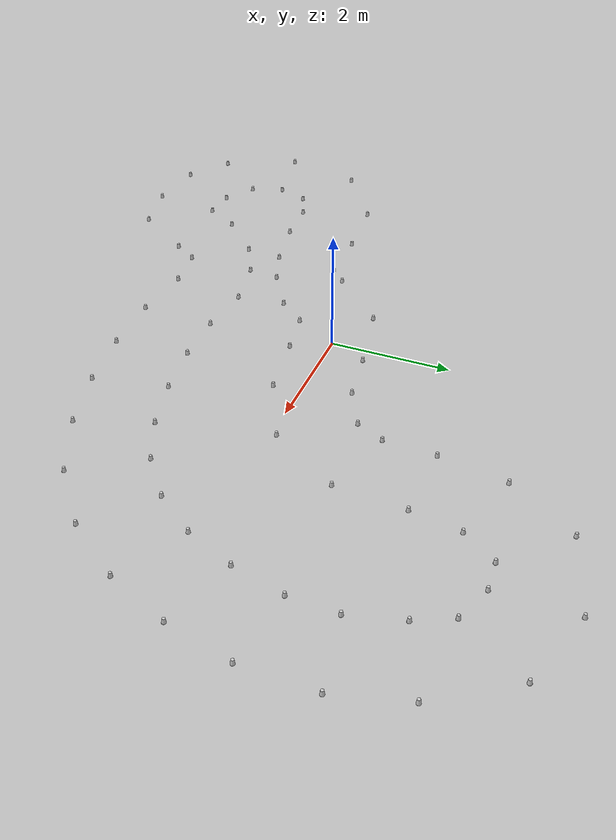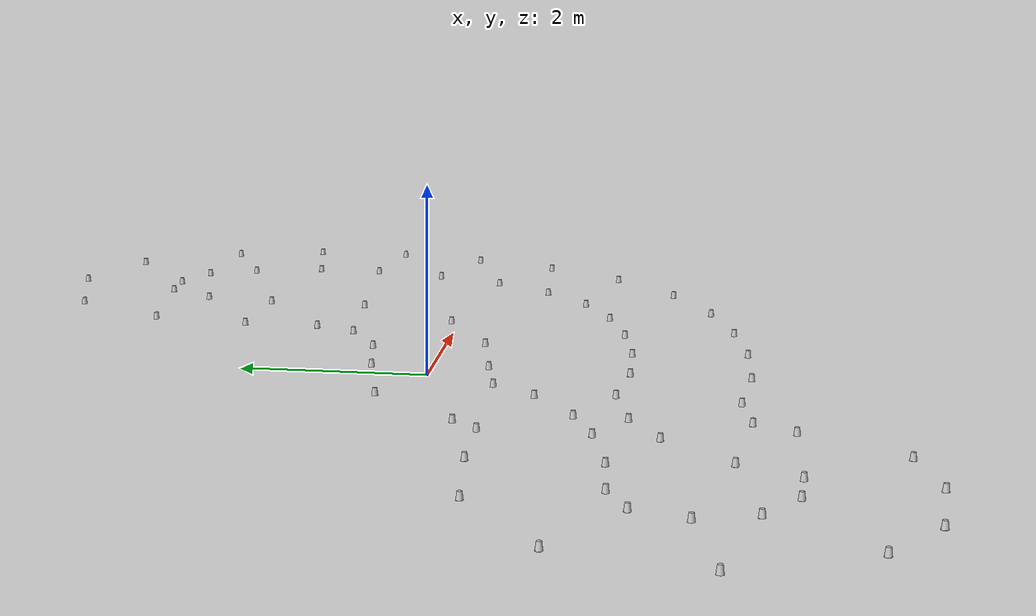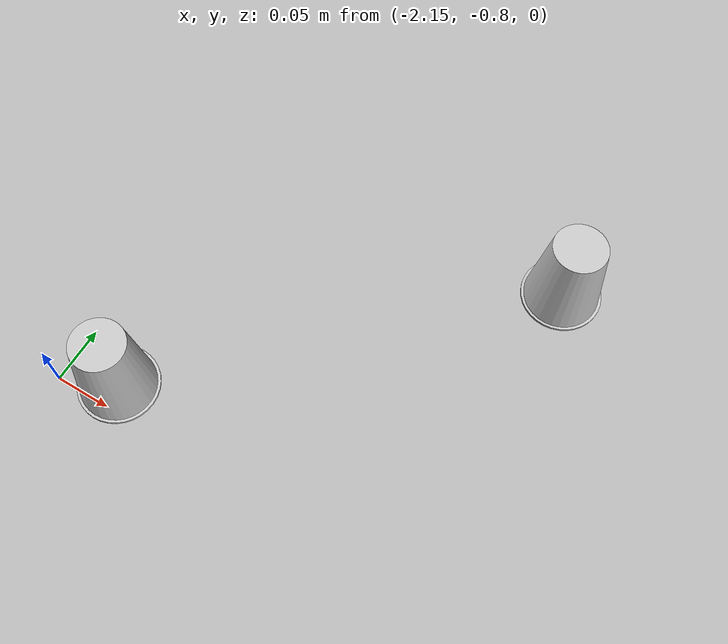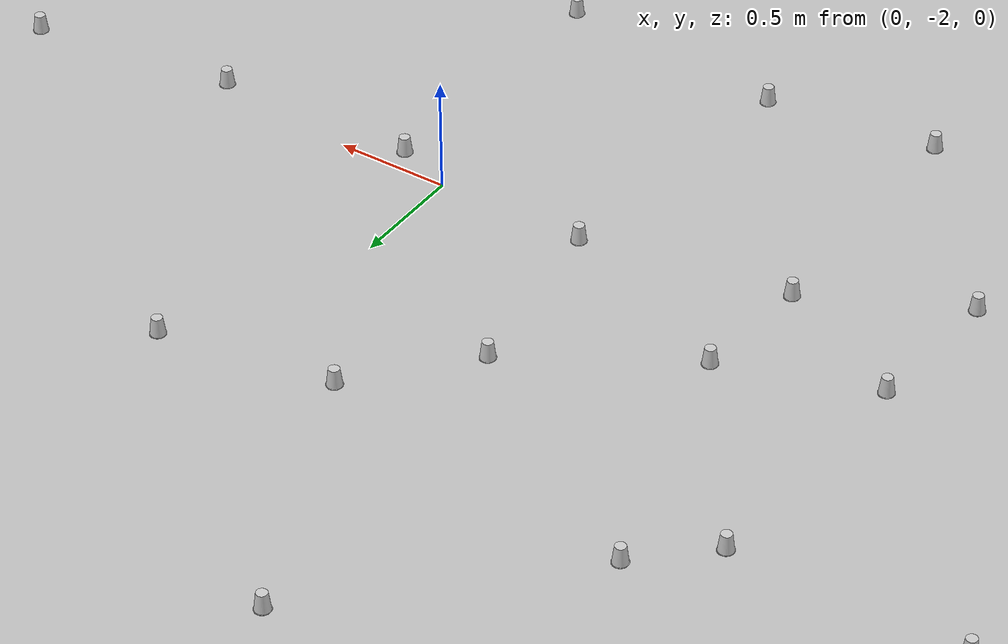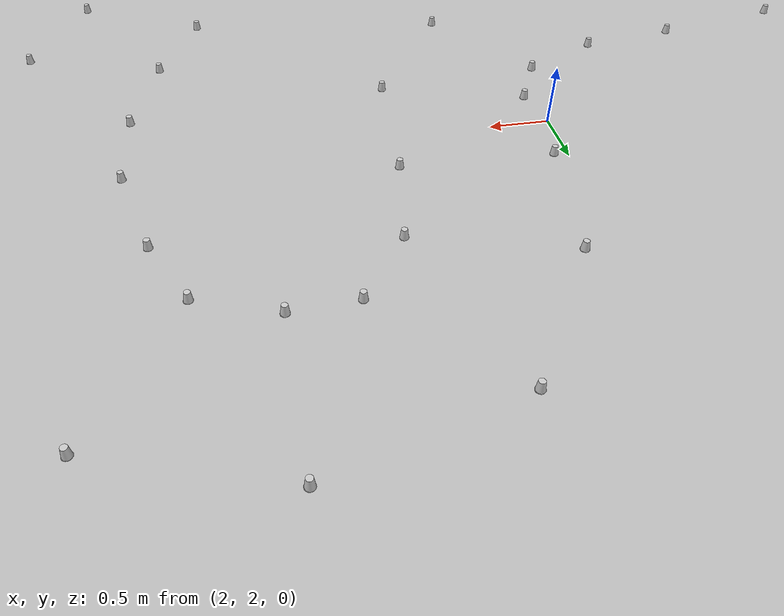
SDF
<?xml version='1.0' encoding='UTF-8'?>
<sdf version="1.4">
  <model name="some track">
    <include>
      <uri>model://cone_yellow</uri>
      <pose>0.3642359434362576 -0.6048851043138825 0 0 0 0</pose>
      <name>cone_right_0</name>
    </include>
    <include>
      <uri>model://cone_yellow</uri>
      <pose>1.4409130098808218 -0.43889523960990073 0 0 0 0</pose>
      <name>cone_right_1</name>
    </include>
    <include>
      <uri>model://cone_yellow</uri>
      <pose>2.5445461102759084 0.08995250784452324 0 0 0 0</pose>
      <name>cone_right_2</name>
    </include>
    <include>
      <uri>model://cone_yellow</uri>
      <pose>3.278874956855552 1.2550937632159098 0 0 0 0</pose>
      <name>cone_right_3</name>
    </include>
    <include>
      <uri>model://cone_yellow</uri>
      <pose>3.361706629129924 2.4271729775951147 0 0 0 0</pose>
      <name>cone_right_4</name>
    </include>
    <include>
      <uri>model://cone_yellow</uri>
      <pose>3.500244651837522 3.249867528490232 0 0 0 0</pose>
      <name>cone_right_5</name>
    </include>
    <include>
      <uri>model://cone_yellow</uri>
      <pose>3.886568700233734 3.8045049522422447 0 0 0 0</pose>
      <name>cone_right_6</name>
    </include>
    <include>
      <uri>model://cone_yellow</uri>
      <pose>4.396008764944351 3.8396050119858454 0 0 0 0</pose>
      <name>cone_right_7</name>
    </include>
    <include>
      <uri>model://cone_yellow</uri>
      <pose>4.999894396216476 3.621031707266691 0 0 0 0</pose>
      <name>cone_right_8</name>
    </include>
    <include>
      <uri>model://cone_yellow</uri>
      <pose>5.269453942556489 3.062670377953148 0 0 0 0</pose>
      <name>cone_right_9</name>
    </include>
    <include>
      <uri>model://cone_yellow</uri>
      <pose>5.490291457545947 2.233763678876452 0 0 0 0</pose>
      <name>cone_right_10</name>
    </include>
    <include>
      <uri>model://cone_yellow</uri>
      <pose>5.458263629243273 1.4515937989107348 0 0 0 0</pose>
      <name>cone_right_11</name>
    </include>
    <include>
      <uri>model://cone_yellow</uri>
      <pose>5.232277238207432 0.5906423784596686 0 0 0 0</pose>
      <name>cone_right_12</name>
    </include>
    <include>
      <uri>model://cone_yellow</uri>
      <pose>4.878562578860319 -0.21243105680908048 0 0 0 0</pose>
      <name>cone_right_13</name>
    </include>
    <include>
      <uri>model://cone_yellow</uri>
      <pose>4.375725468674796 -0.8808318986914818 0 0 0 0</pose>
      <name>cone_right_14</name>
    </include>
    <include>
      <uri>model://cone_yellow</uri>
      <pose>3.72363588061915 -1.3968980205474522 0 0 0 0</pose>
      <name>cone_right_15</name>
    </include>
    <include>
      <uri>model://cone_yellow</uri>
      <pose>2.957666276612485 -1.7316842706831221 0 0 0 0</pose>
      <name>cone_right_16</name>
    </include>
    <include>
      <uri>model://cone_yellow</uri>
      <pose>2.0853456154505516 -1.9521886602077072 0 0 0 0</pose>
      <name>cone_right_17</name>
    </include>
    <include>
      <uri>model://cone_yellow</uri>
      <pose>1.167685694087727 -2.0798737541855656 0 0 0 0</pose>
      <name>cone_right_18</name>
    </include>
    <include>
      <uri>model://cone_yellow</uri>
      <pose>0.2605822591969034 -2.102158771639351 0 0 0 0</pose>
      <name>cone_right_19</name>
    </include>
    <include>
      <uri>model://cone_yellow</uri>
      <pose>-0.6630839642391746 -2.004547508328758 0 0 0 0</pose>
      <name>cone_right_20</name>
    </include>
    <include>
      <uri>model://cone_yellow</uri>
      <pose>-2.9250060747377473 -3.18012769036049 0 0 0 0</pose>
      <name>cone_right_21</name>
    </include>
    <include>
      <uri>model://cone_yellow</uri>
      <pose>-3.2762805134869213 -3.761314189701411 0 0 0 0</pose>
      <name>cone_right_22</name>
    </include>
    <include>
      <uri>model://cone_yellow</uri>
      <pose>-3.8452574811864118 -3.724057170796769 0 0 0 0</pose>
      <name>cone_right_23</name>
    </include>
    <include>
      <uri>model://cone_yellow</uri>
      <pose>-4.371799853666664 -3.3900440180599403 0 0 0 0</pose>
      <name>cone_right_24</name>
    </include>
    <include>
      <uri>model://cone_yellow</uri>
      <pose>-4.561410245411353 -2.8256846726061347 0 0 0 0</pose>
      <name>cone_right_25</name>
    </include>
    <include>
      <uri>model://cone_yellow</uri>
      <pose>-4.367201974447217 -2.303290744859654 0 0 0 0</pose>
      <name>cone_right_26</name>
    </include>
    <include>
      <uri>model://cone_yellow</uri>
      <pose>-3.8739400064803466 -2.0959165687749337 0 0 0 0</pose>
      <name>cone_right_27</name>
    </include>
    <include>
      <uri>model://cone_yellow</uri>
      <pose>-3.083798899569339 -2.045112043850117 0 0 0 0</pose>
      <name>cone_right_28</name>
    </include>
    <include>
      <uri>model://cone_yellow</uri>
      <pose>-0.7772936763781559 -1.1963167280319336 0 0 0 0</pose>
      <name>cone_right_29</name>
    </include>
    <include>
      <uri>model://cone_yellow</uri>
      <pose>-0.38554849610941966 -0.7382627290081502 0 0 0 0</pose>
      <name>cone_right_30</name>
    </include>
    <include>
      <uri>model://cone_yellow</uri>
      <pose>-1.5032493653972807 -1.6404615152114204 0 0 0 0</pose>
      <name>cone_right_31</name>
    </include>
    <include>
      <uri>model://cone_yellow</uri>
      <pose>-2.14927169695666 -1.8665693312572031 0 0 0 0</pose>
      <name>cone_right_32</name>
    </include>
    <include>
      <uri>model://cone_yellow</uri>
      <pose>-1.5517010402642342 -2.1734299387479084 0 0 0 0</pose>
      <name>cone_right_33</name>
    </include>
    <include>
      <uri>model://cone_yellow</uri>
      <pose>-2.1977233718236278 -2.4964411045276123 0 0 0 0</pose>
      <name>cone_right_34</name>
    </include>
    <include>
      <uri>model://cone_blue</uri>
      <pose>0.2917075132165177 0.6430089724449826 0 0 0 0</pose>
      <name>cone_left_0</name>
    </include>
    <include>
      <uri>model://cone_blue</uri>
      <pose>1.162354191930959 0.779671535311513 0 0 0 0</pose>
      <name>cone_left_1</name>
    </include>
    <include>
      <uri>model://cone_blue</uri>
      <pose>1.8475779588626557 1.1276111202578707 0 0 0 0</pose>
      <name>cone_left_2</name>
    </include>
    <include>
      <uri>model://cone_blue</uri>
      <pose>2.0765369972167287 1.5969759517129882 0 0 0 0</pose>
      <name>cone_left_3</name>
    </include>
    <include>
      <uri>model://cone_blue</uri>
      <pose>2.1120867750528403 2.4579986210818046 0 0 0 0</pose>
      <name>cone_left_4</name>
    </include>
    <include>
      <uri>model://cone_blue</uri>
      <pose>2.2942762704838815 3.578714397374948 0 0 0 0</pose>
      <name>cone_left_5</name>
    </include>
    <include>
      <uri>model://cone_blue</uri>
      <pose>3.003337292765947 4.689040017043223 0 0 0 0</pose>
      <name>cone_left_6</name>
    </include>
    <include>
      <uri>model://cone_blue</uri>
      <pose>4.390253681879806 5.089591763523205 0 0 0 0</pose>
      <name>cone_left_7</name>
    </include>
    <include>
      <uri>model://cone_blue</uri>
      <pose>5.650813791331828 4.688179279565229 0 0 0 0</pose>
      <name>cone_left_8</name>
    </include>
    <include>
      <uri>model://cone_blue</uri>
      <pose>6.418932226192232 3.5537912138477634 0 0 0 0</pose>
      <name>cone_left_9</name>
    </include>
    <include>
      <uri>model://cone_blue</uri>
      <pose>6.719263535503998 2.4620784431810567 0 0 0 0</pose>
      <name>cone_left_10</name>
    </include>
    <include>
      <uri>model://cone_blue</uri>
      <pose>6.698221191312664 1.2934633329437508 0 0 0 0</pose>
      <name>cone_left_11</name>
    </include>
    <include>
      <uri>model://cone_blue</uri>
      <pose>6.426532378955317 0.22151549133648785 0 0 0 0</pose>
      <name>cone_left_12</name>
    </include>
    <include>
      <uri>model://cone_blue</uri>
      <pose>5.989003429272253 -0.7863832479682595 0 0 0 0</pose>
      <name>cone_left_13</name>
    </include>
    <include>
      <uri>model://cone_blue</uri>
      <pose>5.31387344835586 -1.7068938626023842 0 0 0 0</pose>
      <name>cone_left_14</name>
    </include>
    <include>
      <uri>model://cone_blue</uri>
      <pose>4.4189228130341975 -2.435683889537242 0 0 0 0</pose>
      <name>cone_left_15</name>
    </include>
    <include>
      <uri>model://cone_blue</uri>
      <pose>3.3832582141907026 -2.9070018884649786 0 0 0 0</pose>
      <name>cone_left_16</name>
    </include>
    <include>
      <uri>model://cone_blue</uri>
      <pose>2.3441930657125796 -3.175094215634146 0 0 0 0</pose>
      <name>cone_left_17</name>
    </include>
    <include>
      <uri>model://cone_blue</uri>
      <pose>1.3020804554791963 -3.3226279728911505 0 0 0 0</pose>
      <name>cone_left_18</name>
    </include>
    <include>
      <uri>model://cone_blue</uri>
      <pose>0.23345894172199774 -3.351864467252984 0 0 0 0</pose>
      <name>cone_left_19</name>
    </include>
    <include>
      <uri>model://cone_blue</uri>
      <pose>-0.797513587732406 -3.247297956458819 0 0 0 0</pose>
      <name>cone_left_20</name>
    </include>
    <include>
      <uri>model://cone_blue</uri>
      <pose>-1.5414257282026436 -3.3450162260470564 0 0 0 0</pose>
      <name>cone_left_21</name>
    </include>
    <include>
      <uri>model://cone_blue</uri>
      <pose>-1.8119171647546921 -3.748927372562172 0 0 0 0</pose>
      <name>cone_left_22</name>
    </include>
    <include>
      <uri>model://cone_blue</uri>
      <pose>-2.504710705124726 -4.744767305423724 0 0 0 0</pose>
      <name>cone_left_23</name>
    </include>
    <include>
      <uri>model://cone_blue</uri>
      <pose>-5.198686452516908 -4.327465242825988 0 0 0 0</pose>
      <name>cone_left_24</name>
    </include>
    <include>
      <uri>model://cone_blue</uri>
      <pose>-5.789115354201848 -3.0607169381564616 0 0 0 0</pose>
      <name>cone_left_25</name>
    </include>
    <include>
      <uri>model://cone_blue</uri>
      <pose>-5.450674911191883 -1.6799237619820815 0 0 0 0</pose>
      <name>cone_left_26</name>
    </include>
    <include>
      <uri>model://cone_blue</uri>
      <pose>-4.253257464006911 -0.9048589436301286 0 0 0 0</pose>
      <name>cone_left_27</name>
    </include>
    <include>
      <uri>model://cone_blue</uri>
      <pose>-3.0895040209859514 -0.7951250632820701 0 0 0 0</pose>
      <name>cone_left_28</name>
    </include>
    <include>
      <uri>model://cone_blue</uri>
      <pose>-2.1036763334644526 -0.7785027533507133 0 0 0 0</pose>
      <name>cone_left_29</name>
    </include>
    <include>
      <uri>model://cone_blue</uri>
      <pose>-1.8233931601957662 -0.5120829449164479 0 0 0 0</pose>
      <name>cone_left_30</name>
    </include>
    <include>
      <uri>model://cone_blue</uri>
      <pose>-0.9085502815581011 0.3970650353037649 0 0 0 0</pose>
      <name>cone_left_31</name>
    </include>
    <include>
      <uri>model://cone_blue</uri>
      <pose>-4.45880153228147 -4.822121498141385 0 0 0 0</pose>
      <name>cone_left_32</name>
    </include>
    <include>
      <uri>model://cone_blue</uri>
      <pose>-3.4251658017864486 -4.9351754061642765 0 0 0 0</pose>
      <name>cone_left_33</name>
    </include>
  </model>
</sdf>

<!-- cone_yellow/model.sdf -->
<sdf version='1.4'>
  <model name="cone_yellow">
    <link name="link">
    <collision name="collision"><geometry><box><size> 0.05 0.05 0.01</size>
             </box></geometry></collision>
      <visual name="visual">
        <geometry>
          <mesh>
            <uri>model://cup.dae</uri>
            <scale>1 1 1</scale>
          </mesh>
        </geometry>
        <material>
            <script>
              <uri>model://cone_yellow/materials/scripts</uri>
              <uri>model://cone_yellow/materials/textures</uri>
              <name>cone_yellow/Image</name>
            </script>
        </material>
      </visual>
    </link>
  </model>
</sdf>

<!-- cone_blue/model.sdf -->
<sdf version='1.4'>
  <model name="cone_blue">
    <link name="link">
    <collision name="collision"><geometry><box><size> 0.05 0.05 0.01</size>
             </box></geometry></collision>
      <visual name="visual">
        <geometry>
          <mesh>
            <uri>model://cup.dae</uri>
            <scale>1 1 1</scale>
          </mesh>
        </geometry>
        <material>
            <script>
              <uri>model://cone_blue/materials/scripts</uri>
              <uri>model://cone_blue/materials/textures</uri>
              <name>cone_blue/Image</name>
            </script>
        </material>
      </visual>
    </link>
  </model>
</sdf>
